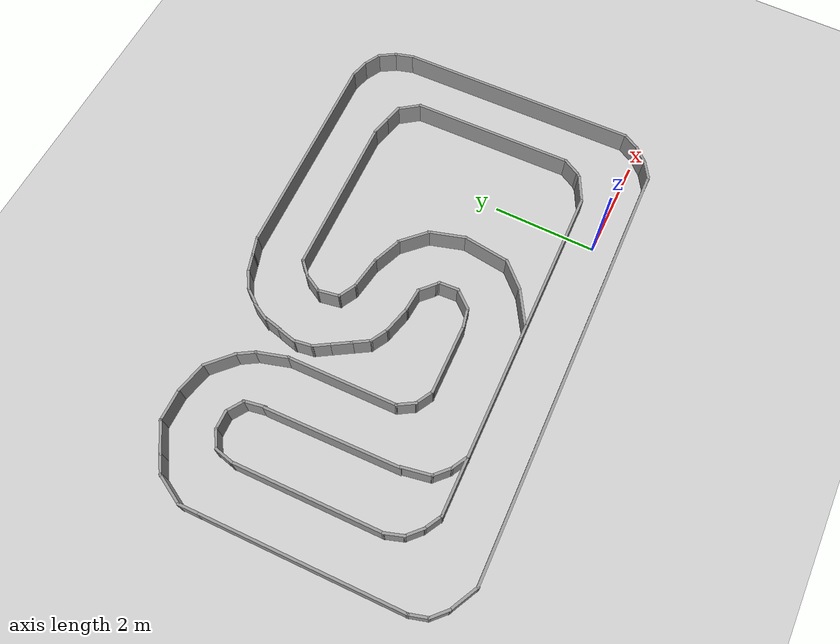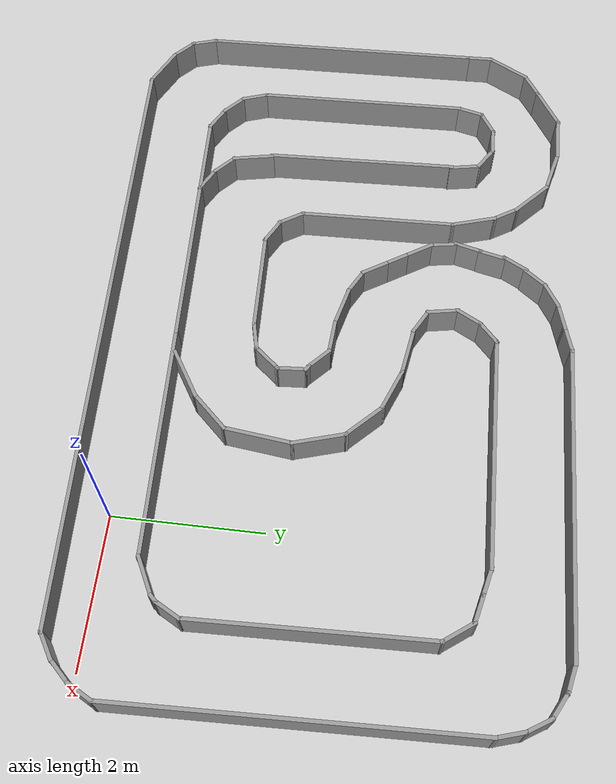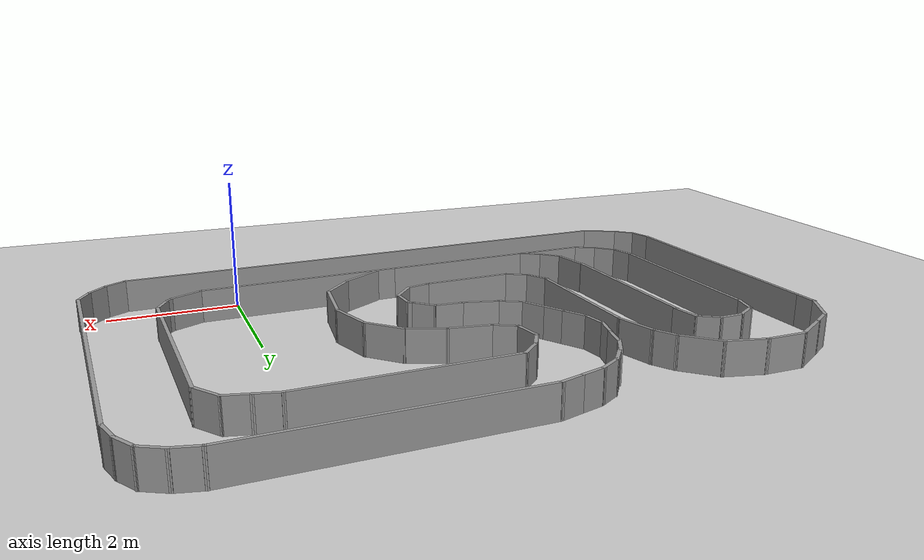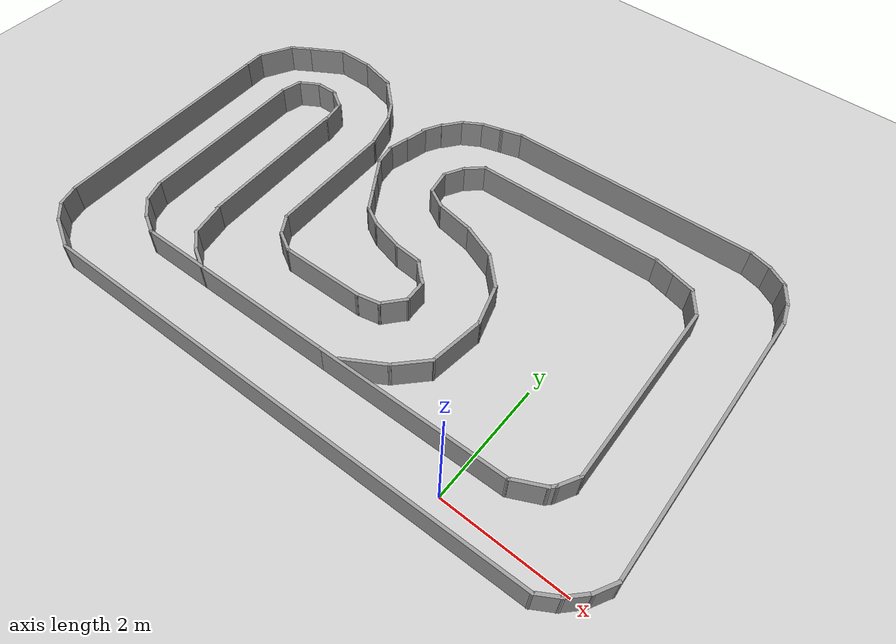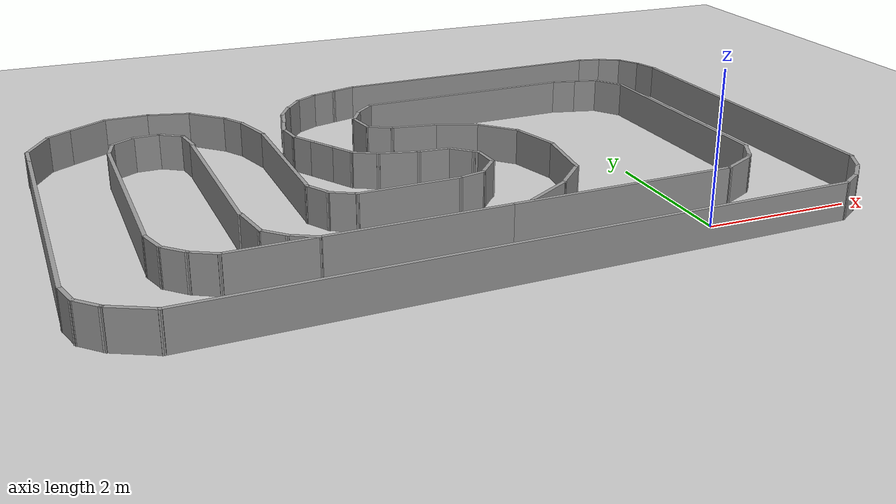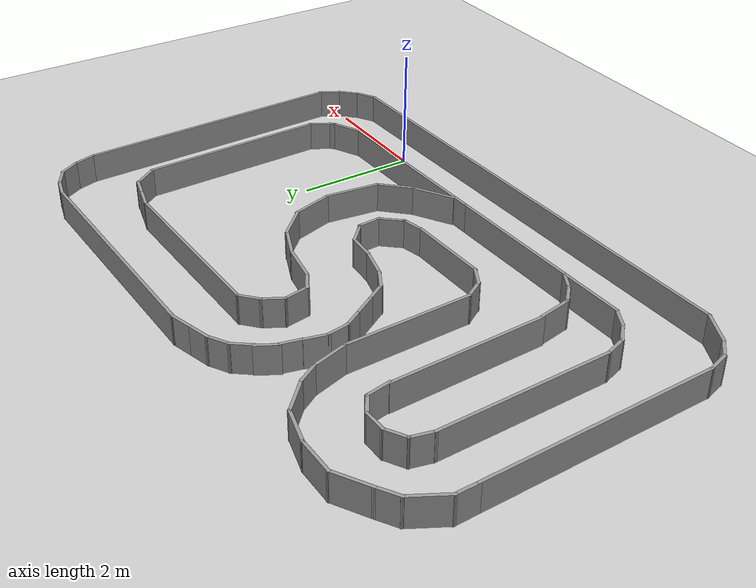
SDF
<sdf version="1.7">
 <world name="default">
  <light name="sun" type="directional">
   <pose>0 0 10 0 -0 0</pose>
   <diffuse>0.8 0.8 0.8 1</diffuse>
   <specular>0.2 0.2 0.2 1</specular>
   <attenuation>
    <range>1000</range>
    <constant>0.9</constant>
    <linear>0.01</linear>
    <quadratic>0.001</quadratic>
   </attenuation>
   <direction>-0.5 0.1 -0.9</direction>
   <spot><inner_angle>0</inner_angle><outer_angle>0</outer_angle><falloff>0</falloff></spot>
  </light>
  <model name="ground_plane">
   <static>1</static>
   <link name="link">
    <collision name="collision">
     <geometry><plane><normal>0 0 1</normal><size>100 100</size></plane></geometry>
     <surface>
      <contact><collide_bitmask>65535</collide_bitmask></contact>
      <friction><ode><mu>100</mu><mu2>50</mu2></ode></friction>
     </surface>
    </collision>
    <visual name="visual">
     <cast_shadows>0</cast_shadows>
     <geometry><plane><normal>0 0 1</normal><size>100 100</size></plane></geometry>
     <material>
      <script><uri>file://media/materials/scripts/gazebo.material</uri><name>Gazebo/Grey</name></script>
     </material>
    </visual>
   </link>
  </model>
  <gravity>0 0 -9.8</gravity>
  <magnetic_field>6e-06 2.3e-05 -4.2e-05</magnetic_field>
  <atmosphere type="adiabatic"/>
  <physics type="ode">
   <max_step_size>0.001</max_step_size>
   <real_time_factor>1</real_time_factor>
   <real_time_update_rate>1000</real_time_update_rate>
  </physics>
  <scene><ambient>0.4 0.4 0.4 1</ambient><background>0.7 0.7 0.7 1</background><shadows>1</shadows></scene>
  <spherical_coordinates>
   <surface_model>EARTH_WGS84</surface_model>
   <latitude_deg>0</latitude_deg>
   <longitude_deg>0</longitude_deg>
   <elevation>0</elevation>
   <heading_deg>0</heading_deg>
  </spherical_coordinates>
  <model name="t">
   <pose>-2.66413 2.58611 0 0 -0 1.59977</pose>
   <link name="Wall_0">
    <collision name="Wall_0_Collision">
     <geometry><box><size>8.4 0.05 0.5</size></box></geometry>
     <pose>0 0 0.25 0 -0 0</pose>
    </collision>
    <visual name="Wall_0_Visual">
     <pose>0 0 0.25 0 -0 0</pose>
     <geometry><box><size>8.4 0.05 0.5</size></box></geometry>
     <material>
      <script><uri>file://media/materials/scripts/gazebo.material</uri><name>Gazebo/Grey</name></script>
      <ambient>1 1 1 1</ambient>
     </material>
     <meta><layer>0</layer></meta>
    </visual>
    <pose>-3.11423 -0.060573 0 0 -0 -1.5708</pose>
   </link>
   <link name="Wall_10">
    <collision name="Wall_10_Collision">
     <geometry><box><size>4.15017 0.05 0.5</size></box></geometry>
     <pose>0 0 0.25 0 -0 0</pose>
    </collision>
    <visual name="Wall_10_Visual">
     <pose>0 0 0.25 0 -0 0</pose>
     <geometry><box><size>4.15017 0.05 0.5</size></box></geometry>
     <material>
      <script><uri>file://media/materials/scripts/gazebo.material</uri><name>Gazebo/Grey</name></script>
      <ambient>1 1 1 1</ambient>
     </material>
     <meta><layer>0</layer></meta>
    </visual>
    <pose>3.11777 -2.00457 0 0 -0 1.5708</pose>
   </link>
   <link name="Wall_12">
    <collision name="Wall_12_Collision">
     <geometry><box><size>0.400036 0.05 0.5</size></box></geometry>
     <pose>0 0 0.25 0 -0 0</pose>
    </collision>
    <visual name="Wall_12_Visual">
     <pose>0 0 0.25 0 -0 0</pose>
     <geometry><box><size>0.400036 0.05 0.5</size></box></geometry>
     <material>
      <script><uri>file://media/materials/scripts/gazebo.material</uri><name>Gazebo/Grey</name></script>
      <ambient>1 1 1 1</ambient>
     </material>
     <meta><layer>0</layer></meta>
    </visual>
    <pose>3.07227 0.214427 0 0 -0 1.83379</pose>
   </link>
   <link name="Wall_13">
    <collision name="Wall_13_Collision">
     <geometry><box><size>0.399777 0.05 0.5</size></box></geometry>
     <pose>0 0 0.25 0 -0 0</pose>
    </collision>
    <visual name="Wall_13_Visual">
     <pose>0 0 0.25 0 -0 0</pose>
     <geometry><box><size>0.399777 0.05 0.5</size></box></geometry>
     <material>
      <script><uri>file://media/materials/scripts/gazebo.material</uri><name>Gazebo/Grey</name></script>
      <ambient>1 1 1 1</ambient>
     </material>
     <meta><layer>0</layer></meta>
    </visual>
    <pose>2.98177 0.552427 0 0 -0 1.83103</pose>
   </link>
   <link name="Wall_14">
    <collision name="Wall_14_Collision">
     <geometry><box><size>0.399906 0.05 0.5</size></box></geometry>
     <pose>0 0 0.25 0 -0 0</pose>
    </collision>
    <visual name="Wall_14_Visual">
     <pose>0 0 0.25 0 -0 0</pose>
     <geometry><box><size>0.399906 0.05 0.5</size></box></geometry>
     <material>
      <script><uri>file://media/materials/scripts/gazebo.material</uri><name>Gazebo/Grey</name></script>
      <ambient>1 1 1 1</ambient>
     </material>
     <meta><layer>0</layer></meta>
    </visual>
    <pose>2.84927 0.872927 0 0 -0 2.09455</pose>
   </link>
   <link name="Wall_15">
    <collision name="Wall_15_Collision">
     <geometry><box><size>0.384204 0.05 0.5</size></box></geometry>
     <pose>0 0 0.25 0 -0 0</pose>
    </collision>
    <visual name="Wall_15_Visual">
     <pose>0 0 0.25 0 -0 0</pose>
     <geometry><box><size>0.384204 0.05 0.5</size></box></geometry>
     <material>
      <script><uri>file://media/materials/scripts/gazebo.material</uri><name>Gazebo/Grey</name></script>
      <ambient>1 1 1 1</ambient>
     </material>
     <meta><layer>0</layer></meta>
    </visual>
    <pose>2.63119 1.1287 0 0 -0 2.46772</pose>
   </link>
   <link name="Wall_16">
    <collision name="Wall_16_Collision">
     <geometry><box><size>0.399906 0.05 0.5</size></box></geometry>
     <pose>0 0 0.25 0 -0 0</pose>
    </collision>
    <visual name="Wall_16_Visual">
     <pose>0 0 0.25 0 -0 0</pose>
     <geometry><box><size>0.399906 0.05 0.5</size></box></geometry>
     <material>
      <script><uri>file://media/materials/scripts/gazebo.material</uri><name>Gazebo/Grey</name></script>
      <ambient>1 1 1 1</ambient>
     </material>
     <meta><layer>0</layer></meta>
    </visual>
    <pose>2.35569 1.33363 0 0 -0 2.61784</pose>
   </link>
   <link name="Wall_17">
    <collision name="Wall_17_Collision">
     <geometry><box><size>0.385391 0.05 0.5</size></box></geometry>
     <pose>0 0 0.25 0 -0 0</pose>
    </collision>
    <visual name="Wall_17_Visual">
     <pose>0 0 0.25 0 -0 0</pose>
     <geometry><box><size>0.385391 0.05 0.5</size></box></geometry>
     <material>
      <script><uri>file://media/materials/scripts/gazebo.material</uri><name>Gazebo/Grey</name></script>
      <ambient>1 1 1 1</ambient>
     </material>
     <meta><layer>0</layer></meta>
    </visual>
    <pose>2.03519 1.44969 0 0 -0 2.89021</pose>
   </link>
   <link name="Wall_18">
    <collision name="Wall_18_Collision">
     <geometry><box><size>0.400036 0.05 0.5</size></box></geometry>
     <pose>0 0 0.25 0 -0 0</pose>
    </collision>
    <visual name="Wall_18_Visual">
     <pose>0 0 0.25 0 -0 0</pose>
     <geometry><box><size>0.400036 0.05 0.5</size></box></geometry>
     <material>
      <script><uri>file://media/materials/scripts/gazebo.material</uri><name>Gazebo/Grey</name></script>
      <ambient>1 1 1 1</ambient>
     </material>
     <meta><layer>0</layer></meta>
    </visual>
    <pose>1.70377 1.54348 0 0 -0 2.8786</pose>
   </link>
   <link name="Wall_19">
    <collision name="Wall_19_Collision">
     <geometry><box><size>0.391908 0.05 0.5</size></box></geometry>
     <pose>0 0 0.25 0 -0 0</pose>
    </collision>
    <visual name="Wall_19_Visual">
     <pose>0 0 0.25 0 -0 0</pose>
     <geometry><box><size>0.391908 0.05 0.5</size></box></geometry>
     <material>
      <script><uri>file://media/materials/scripts/gazebo.material</uri><name>Gazebo/Grey</name></script>
      <ambient>1 1 1 1</ambient>
     </material>
     <meta><layer>0</layer></meta>
    </visual>
    <pose>1.36577 1.55991 0 0 -0 -3.00931</pose>
   </link>
   <link name="Wall_2">
    <collision name="Wall_2_Collision">
     <geometry><box><size>0.4 0.05 0.5</size></box></geometry>
     <pose>0 0 0.25 0 -0 0</pose>
    </collision>
    <visual name="Wall_2_Visual">
     <pose>0 0 0.25 0 -0 0</pose>
     <geometry><box><size>0.4 0.05 0.5</size></box></geometry>
     <material>
      <script><uri>file://media/materials/scripts/gazebo.material</uri><name>Gazebo/Grey</name></script>
      <ambient>1 1 1 1</ambient>
     </material>
     <meta><layer>0</layer></meta>
    </visual>
    <pose>-3.02673 -4.38707 0 0 -0 -1.04704</pose>
   </link>
   <link name="Wall_20">
    <collision name="Wall_20_Collision">
     <geometry><box><size>0.399906 0.05 0.5</size></box></geometry>
     <pose>0 0 0.25 0 -0 0</pose>
    </collision>
    <visual name="Wall_20_Visual">
     <pose>0 0 0.25 0 -0 0</pose>
     <geometry><box><size>0.399906 0.05 0.5</size></box></geometry>
     <material>
      <script><uri>file://media/materials/scripts/gazebo.material</uri><name>Gazebo/Grey</name></script>
      <ambient>1 1 1 1</ambient>
     </material>
     <meta><layer>0</layer></meta>
    </visual>
    <pose>1.04527 1.44993 0 0 -0 -2.61784</pose>
   </link>
   <link name="Wall_21">
    <collision name="Wall_21_Collision">
     <geometry><box><size>0.399922 0.05 0.5</size></box></geometry>
     <pose>0 0 0.25 0 -0 0</pose>
    </collision>
    <visual name="Wall_21_Visual">
     <pose>0 0 0.25 0 -0 0</pose>
     <geometry><box><size>0.399922 0.05 0.5</size></box></geometry>
     <material>
      <script><uri>file://media/materials/scripts/gazebo.material</uri><name>Gazebo/Grey</name></script>
      <ambient>1 1 1 1</ambient>
     </material>
     <meta><layer>0</layer></meta>
    </visual>
    <pose>0.742268 1.27493 0 0 -0 -2.61784</pose>
   </link>
   <link name="Wall_22">
    <collision name="Wall_22_Collision">
     <geometry><box><size>0.399906 0.05 0.5</size></box></geometry>
     <pose>0 0 0.25 0 -0 0</pose>
    </collision>
    <visual name="Wall_22_Visual">
     <pose>0 0 0.25 0 -0 0</pose>
     <geometry><box><size>0.399906 0.05 0.5</size></box></geometry>
     <material>
      <script><uri>file://media/materials/scripts/gazebo.material</uri><name>Gazebo/Grey</name></script>
      <ambient>1 1 1 1</ambient>
     </material>
     <meta><layer>0</layer></meta>
    </visual>
    <pose>0.439268 1.09993 0 0 -0 -2.61784</pose>
   </link>
   <link name="Wall_23">
    <collision name="Wall_23_Collision">
     <geometry><box><size>0.399906 0.05 0.5</size></box></geometry>
     <pose>0 0 0.25 0 -0 0</pose>
    </collision>
    <visual name="Wall_23_Visual">
     <pose>0 0 0.25 0 -0 0</pose>
     <geometry><box><size>0.399906 0.05 0.5</size></box></geometry>
     <material>
      <script><uri>file://media/materials/scripts/gazebo.material</uri><name>Gazebo/Grey</name></script>
      <ambient>1 1 1 1</ambient>
     </material>
     <meta><layer>0</layer></meta>
    </visual>
    <pose>0.200268 0.860927 0 0 -0 -2.09455</pose>
   </link>
   <link name="Wall_27">
    <collision name="Wall_27_Collision">
     <geometry><box><size>0.584614 0.05 0.5</size></box></geometry>
     <pose>0 0 0.25 0 -0 0</pose>
    </collision>
    <visual name="Wall_27_Visual">
     <pose>0 0 0.25 0 -0 0</pose>
     <geometry><box><size>0.584614 0.05 0.5</size></box></geometry>
     <material>
      <script><uri>file://media/materials/scripts/gazebo.material</uri><name>Gazebo/Grey</name></script>
      <ambient>1 1 1 1</ambient>
     </material>
     <meta><layer>0</layer></meta>
    </visual>
    <pose>0.041268 0.451927 0 0 -0 1.29995</pose>
   </link>
   <link name="Wall_29">
    <collision name="Wall_29_Collision">
     <geometry><box><size>0.481405 0.05 0.5</size></box></geometry>
     <pose>0 0 0.25 0 -0 0</pose>
    </collision>
    <visual name="Wall_29_Visual">
     <pose>0 0 0.25 0 -0 0</pose>
     <geometry><box><size>0.481405 0.05 0.5</size></box></geometry>
     <material>
      <script><uri>file://media/materials/scripts/gazebo.material</uri><name>Gazebo/Grey</name></script>
      <ambient>1 1 1 1</ambient>
     </material>
     <meta><layer>0</layer></meta>
    </visual>
    <pose>-0.050232 -0.020573 0 0 -0 1.47804</pose>
   </link>
   <link name="Wall_3">
    <collision name="Wall_3_Collision">
     <geometry><box><size>0.400077 0.05 0.5</size></box></geometry>
     <pose>0 0 0.25 0 -0 0</pose>
    </collision>
    <visual name="Wall_3_Visual">
     <pose>0 0 0.25 0 -0 0</pose>
     <geometry><box><size>0.400077 0.05 0.5</size></box></geometry>
     <material>
      <script><uri>file://media/materials/scripts/gazebo.material</uri><name>Gazebo/Grey</name></script>
      <ambient>1 1 1 1</ambient>
     </material>
     <meta><layer>0</layer></meta>
    </visual>
    <pose>-2.81573 -4.66257 0 0 -0 -0.787418</pose>
   </link>
   <link name="Wall_31">
    <collision name="Wall_31_Collision">
     <geometry><box><size>0.400019 0.05 0.5</size></box></geometry>
     <pose>0 0 0.25 0 -0 0</pose>
    </collision>
    <visual name="Wall_31_Visual">
     <pose>0 0 0.25 0 -0 0</pose>
     <geometry><box><size>0.400019 0.05 0.5</size></box></geometry>
     <material>
      <script><uri>file://media/materials/scripts/gazebo.material</uri><name>Gazebo/Grey</name></script>
      <ambient>1 1 1 1</ambient>
     </material>
     <meta><layer>0</layer></meta>
    </visual>
    <pose>-0.193732 -0.359573 0 0 -0 -2.35417</pose>
   </link>
   <link name="Wall_32">
    <collision name="Wall_32_Collision">
     <geometry><box><size>0.114544 0.05 0.5</size></box></geometry>
     <pose>0 0 0.25 0 -0 0</pose>
    </collision>
    <visual name="Wall_32_Visual">
     <pose>0 0 0.25 0 -0 0</pose>
     <geometry><box><size>0.114544 0.05 0.5</size></box></geometry>
     <material>
      <script><uri>file://media/materials/scripts/gazebo.material</uri><name>Gazebo/Grey</name></script>
      <ambient>1 1 1 1</ambient>
     </material>
     <meta><layer>0</layer></meta>
    </visual>
    <pose>-0.336144 -0.509723 0 0 -0 -2.19692</pose>
   </link>
   <link name="Wall_33">
    <collision name="Wall_33_Collision">
     <geometry><box><size>0.419959 0.05 0.5</size></box></geometry>
     <pose>0 0 0.25 0 -0 0</pose>
    </collision>
    <visual name="Wall_33_Visual">
     <pose>0 0 0.25 0 -0 0</pose>
     <geometry><box><size>0.419959 0.05 0.5</size></box></geometry>
     <material>
      <script><uri>file://media/materials/scripts/gazebo.material</uri><name>Gazebo/Grey</name></script>
      <ambient>1 1 1 1</ambient>
     </material>
     <meta><layer>0</layer></meta>
    </visual>
    <pose>-0.546493 -0.542449 0 0 -0 -3.10604</pose>
   </link>
   <link name="Wall_34">
    <collision name="Wall_34_Collision">
     <geometry><box><size>0.461078 0.05 0.5</size></box></geometry>
     <pose>0 0 0.25 0 -0 0</pose>
    </collision>
    <visual name="Wall_34_Visual">
     <pose>0 0 0.25 0 -0 0</pose>
     <geometry><box><size>0.461078 0.05 0.5</size></box></geometry>
     <material>
      <script><uri>file://media/materials/scripts/gazebo.material</uri><name>Gazebo/Grey</name></script>
      <ambient>1 1 1 1</ambient>
     </material>
     <meta><layer>0</layer></meta>
    </visual>
    <pose>-0.877869 -0.411874 0 0 -0 2.41105</pose>
   </link>
   <link name="Wall_35">
    <collision name="Wall_35_Collision">
     <geometry><box><size>0.408311 0.05 0.5</size></box></geometry>
     <pose>0 0 0.25 0 -0 0</pose>
    </collision>
    <visual name="Wall_35_Visual">
     <pose>0 0 0.25 0 -0 0</pose>
     <geometry><box><size>0.408311 0.05 0.5</size></box></geometry>
     <material>
      <script><uri>file://media/materials/scripts/gazebo.material</uri><name>Gazebo/Grey</name></script>
      <ambient>1 1 1 1</ambient>
     </material>
     <meta><layer>0</layer></meta>
    </visual>
    <pose>-1.06659 -0.099148 0 0 -0 1.77105</pose>
   </link>
   <link name="Wall_36">
    <collision name="Wall_36_Collision">
     <geometry><box><size>1.4 0.05 0.5</size></box></geometry>
     <pose>0 0 0.25 0 -0 0</pose>
    </collision>
    <visual name="Wall_36_Visual">
     <pose>0 0 0.25 0 -0 0</pose>
     <geometry><box><size>1.4 0.05 0.5</size></box></geometry>
     <material>
      <script><uri>file://media/materials/scripts/gazebo.material</uri><name>Gazebo/Grey</name></script>
      <ambient>1 1 1 1</ambient>
     </material>
     <meta><layer>0</layer></meta>
    </visual>
    <pose>-1.10223 0.751427 0 0 -0 1.5708</pose>
   </link>
   <link name="Wall_37">
    <collision name="Wall_37_Collision">
     <geometry><box><size>0.399906 0.05 0.5</size></box></geometry>
     <pose>0 0 0.25 0 -0 0</pose>
    </collision>
    <visual name="Wall_37_Visual">
     <pose>0 0 0.25 0 -0 0</pose>
     <geometry><box><size>0.399906 0.05 0.5</size></box></geometry>
     <material>
      <script><uri>file://media/materials/scripts/gazebo.material</uri><name>Gazebo/Grey</name></script>
      <ambient>1 1 1 1</ambient>
     </material>
     <meta><layer>0</layer></meta>
    </visual>
    <pose>-1.01473 1.57793 0 0 -0 1.04704</pose>
   </link>
   <link name="Wall_38">
    <collision name="Wall_38_Collision">
     <geometry><box><size>0.399906 0.05 0.5</size></box></geometry>
     <pose>0 0 0.25 0 -0 0</pose>
    </collision>
    <visual name="Wall_38_Visual">
     <pose>0 0 0.25 0 -0 0</pose>
     <geometry><box><size>0.399906 0.05 0.5</size></box></geometry>
     <material>
      <script><uri>file://media/materials/scripts/gazebo.material</uri><name>Gazebo/Grey</name></script>
      <ambient>1 1 1 1</ambient>
     </material>
     <meta><layer>0</layer></meta>
    </visual>
    <pose>-0.775732 1.81693 0 0 -0 0.523754</pose>
   </link>
   <link name="Wall_39">
    <collision name="Wall_39_Collision">
     <geometry><box><size>2.15002 0.05 0.5</size></box></geometry>
     <pose>0 0 0.25 0 -0 0</pose>
    </collision>
    <visual name="Wall_39_Visual">
     <pose>0 0 0.25 0 -0 0</pose>
     <geometry><box><size>2.15002 0.05 0.5</size></box></geometry>
     <material>
      <script><uri>file://media/materials/scripts/gazebo.material</uri><name>Gazebo/Grey</name></script>
      <ambient>1 1 1 1</ambient>
     </material>
     <meta><layer>0</layer></meta>
    </visual>
    <pose>0.425768 1.90443 0 0 -0 0</pose>
   </link>
   <link name="Wall_4">
    <collision name="Wall_4_Collision">
     <geometry><box><size>0.400221 0.05 0.5</size></box></geometry>
     <pose>0 0 0.25 0 -0 0</pose>
    </collision>
    <visual name="Wall_4_Visual">
     <pose>0 0 0.25 0 -0 0</pose>
     <geometry><box><size>0.400221 0.05 0.5</size></box></geometry>
     <material>
      <script><uri>file://media/materials/scripts/gazebo.material</uri><name>Gazebo/Grey</name></script>
      <ambient>1 1 1 1</ambient>
     </material>
     <meta><layer>0</layer></meta>
    </visual>
    <pose>-2.54023 -4.87407 0 0 -0 -0.522329</pose>
   </link>
   <link name="Wall_40">
    <collision name="Wall_40_Collision">
     <geometry><box><size>0.650354 0.05 0.5</size></box></geometry>
     <pose>0 0 0.25 0 -0 0</pose>
    </collision>
    <visual name="Wall_40_Visual">
     <pose>0 0 0.25 0 -0 0</pose>
     <geometry><box><size>0.650354 0.05 0.5</size></box></geometry>
     <material>
      <script><uri>file://media/materials/scripts/gazebo.material</uri><name>Gazebo/Grey</name></script>
      <ambient>1 1 1 1</ambient>
     </material>
     <meta><layer>0</layer></meta>
    </visual>
    <pose>1.76577 1.98193 0 0 -0 0.261139</pose>
   </link>
   <link name="Wall_41">
    <collision name="Wall_41_Collision">
     <geometry><box><size>0.399906 0.05 0.5</size></box></geometry>
     <pose>0 0 0.25 0 -0 0</pose>
    </collision>
    <visual name="Wall_41_Visual">
     <pose>0 0 0.25 0 -0 0</pose>
     <geometry><box><size>0.399906 0.05 0.5</size></box></geometry>
     <material>
      <script><uri>file://media/materials/scripts/gazebo.material</uri><name>Gazebo/Grey</name></script>
      <ambient>1 1 1 1</ambient>
     </material>
     <meta><layer>0</layer></meta>
    </visual>
    <pose>2.20727 2.14693 0 0 -0 0.523754</pose>
   </link>
   <link name="Wall_42">
    <collision name="Wall_42_Collision">
     <geometry><box><size>0.649627 0.05 0.5</size></box></geometry>
     <pose>0 0 0.25 0 -0 0</pose>
    </collision>
    <visual name="Wall_42_Visual">
     <pose>0 0 0.25 0 -0 0</pose>
     <geometry><box><size>0.649627 0.05 0.5</size></box></geometry>
     <material>
      <script><uri>file://media/materials/scripts/gazebo.material</uri><name>Gazebo/Grey</name></script>
      <ambient>1 1 1 1</ambient>
     </material>
     <meta><layer>0</layer></meta>
    </visual>
    <pose>2.57077 2.44643 0 0 -0 0.785398</pose>
   </link>
   <link name="Wall_43">
    <collision name="Wall_43_Collision">
     <geometry><box><size>0.650613 0.05 0.5</size></box></geometry>
     <pose>0 0 0.25 0 -0 0</pose>
    </collision>
    <visual name="Wall_43_Visual">
     <pose>0 0 0.25 0 -0 0</pose>
     <geometry><box><size>0.650613 0.05 0.5</size></box></geometry>
     <material>
      <script><uri>file://media/materials/scripts/gazebo.material</uri><name>Gazebo/Grey</name></script>
      <ambient>1 1 1 1</ambient>
     </material>
     <meta><layer>0</layer></meta>
    </visual>
    <pose>2.86077 2.94843 0 0 -0 1.30805</pose>
   </link>
   <link name="Wall_44">
    <collision name="Wall_44_Collision">
     <geometry><box><size>0.650083 0.05 0.5</size></box></geometry>
     <pose>0 0 0.25 0 -0 0</pose>
    </collision>
    <visual name="Wall_44_Visual">
     <pose>0 0 0.25 0 -0 0</pose>
     <geometry><box><size>0.650083 0.05 0.5</size></box></geometry>
     <material>
      <script><uri>file://media/materials/scripts/gazebo.material</uri><name>Gazebo/Grey</name></script>
      <ambient>1 1 1 1</ambient>
     </material>
     <meta><layer>0</layer></meta>
    </visual>
    <pose>2.94377 3.53843 0 0 -0 1.55413</pose>
   </link>
   <link name="Wall_45">
    <collision name="Wall_45_Collision">
     <geometry><box><size>0.650333 0.05 0.5</size></box></geometry>
     <pose>0 0 0.25 0 -0 0</pose>
    </collision>
    <visual name="Wall_45_Visual">
     <pose>0 0 0.25 0 -0 0</pose>
     <geometry><box><size>0.650333 0.05 0.5</size></box></geometry>
     <material>
      <script><uri>file://media/materials/scripts/gazebo.material</uri><name>Gazebo/Grey</name></script>
      <ambient>1 1 1 1</ambient>
     </material>
     <meta><layer>0</layer></meta>
    </visual>
    <pose>2.79877 4.09843 0 0 -0 2.09408</pose>
   </link>
   <link name="Wall_46">
    <collision name="Wall_46_Collision">
     <geometry><box><size>0.405013 0.05 0.5</size></box></geometry>
     <pose>0 0 0.25 0 -0 0</pose>
    </collision>
    <visual name="Wall_46_Visual">
     <pose>0 0 0.25 0 -0 0</pose>
     <geometry><box><size>0.405013 0.05 0.5</size></box></geometry>
     <material>
      <script><uri>file://media/materials/scripts/gazebo.material</uri><name>Gazebo/Grey</name></script>
      <ambient>1 1 1 1</ambient>
     </material>
     <meta><layer>0</layer></meta>
    </visual>
    <pose>2.55627 4.50993 0 0 -0 2.11895</pose>
   </link>
   <link name="Wall_47">
    <collision name="Wall_47_Collision">
     <geometry><box><size>0.650333 0.05 0.5</size></box></geometry>
     <pose>0 0 0.25 0 -0 0</pose>
    </collision>
    <visual name="Wall_47_Visual">
     <pose>0 0 0.25 0 -0 0</pose>
     <geometry><box><size>0.650333 0.05 0.5</size></box></geometry>
     <material>
      <script><uri>file://media/materials/scripts/gazebo.material</uri><name>Gazebo/Grey</name></script>
      <ambient>1 1 1 1</ambient>
     </material>
     <meta><layer>0</layer></meta>
    </visual>
    <pose>2.20377 4.81143 0 0 -0 2.61831</pose>
   </link>
   <link name="Wall_48">
    <collision name="Wall_48_Collision">
     <geometry><box><size>0.4 0.05 0.5</size></box></geometry>
     <pose>0 0 0.25 0 -0 0</pose>
    </collision>
    <visual name="Wall_48_Visual">
     <pose>0 0 0.25 0 -0 0</pose>
     <geometry><box><size>0.4 0.05 0.5</size></box></geometry>
     <material>
      <script><uri>file://media/materials/scripts/gazebo.material</uri><name>Gazebo/Grey</name></script>
      <ambient>1 1 1 1</ambient>
     </material>
     <meta><layer>0</layer></meta>
    </visual>
    <pose>1.76877 4.96143 0 0 -0 3.14159</pose>
   </link>
   <link name="Wall_49">
    <collision name="Wall_49_Collision">
     <geometry><box><size>3.9 0.05 0.5</size></box></geometry>
     <pose>0 0 0.25 0 -0 0</pose>
    </collision>
    <visual name="Wall_49_Visual">
     <pose>0 0 0.25 0 -0 0</pose>
     <geometry><box><size>3.9 0.05 0.5</size></box></geometry>
     <material>
      <script><uri>file://media/materials/scripts/gazebo.material</uri><name>Gazebo/Grey</name></script>
      <ambient>1 1 1 1</ambient>
     </material>
     <meta><layer>0</layer></meta>
    </visual>
    <pose>-0.331232 4.96143 0 0 -0 3.14159</pose>
   </link>
   <link name="Wall_5">
    <collision name="Wall_5_Collision">
     <geometry><box><size>4.6496 0.05 0.5</size></box></geometry>
     <pose>0 0 0.25 0 -0 0</pose>
    </collision>
    <visual name="Wall_5_Visual">
     <pose>0 0 0.25 0 -0 0</pose>
     <geometry><box><size>4.6496 0.05 0.5</size></box></geometry>
     <material>
      <script><uri>file://media/materials/scripts/gazebo.material</uri><name>Gazebo/Grey</name></script>
      <ambient>1 1 1 1</ambient>
     </material>
     <meta><layer>0</layer></meta>
    </visual>
    <pose>-0.088232 -4.96157 0 0 -0 0</pose>
   </link>
   <link name="Wall_50">
    <collision name="Wall_50_Collision">
     <geometry><box><size>0.400036 0.05 0.5</size></box></geometry>
     <pose>0 0 0.25 0 -0 0</pose>
    </collision>
    <visual name="Wall_50_Visual">
     <pose>0 0 0.25 0 -0 0</pose>
     <geometry><box><size>0.400036 0.05 0.5</size></box></geometry>
     <material>
      <script><uri>file://media/materials/scripts/gazebo.material</uri><name>Gazebo/Grey</name></script>
      <ambient>1 1 1 1</ambient>
     </material>
     <meta><layer>0</layer></meta>
    </visual>
    <pose>-2.42523 4.91593 0 0 -0 -2.8786</pose>
   </link>
   <link name="Wall_51">
    <collision name="Wall_51_Collision">
     <geometry><box><size>0.400019 0.05 0.5</size></box></geometry>
     <pose>0 0 0.25 0 -0 0</pose>
    </collision>
    <visual name="Wall_51_Visual">
     <pose>0 0 0.25 0 -0 0</pose>
     <geometry><box><size>0.400019 0.05 0.5</size></box></geometry>
     <material>
      <script><uri>file://media/materials/scripts/gazebo.material</uri><name>Gazebo/Grey</name></script>
      <ambient>1 1 1 1</ambient>
     </material>
     <meta><layer>0</layer></meta>
    </visual>
    <pose>-2.71823 4.74693 0 0 -0 -2.35821</pose>
   </link>
   <link name="Wall_52">
    <collision name="Wall_52_Collision">
     <geometry><box><size>0.627118 0.05 0.5</size></box></geometry>
     <pose>0 0 0.25 0 -0 0</pose>
    </collision>
    <visual name="Wall_52_Visual">
     <pose>0 0 0.25 0 -0 0</pose>
     <geometry><box><size>0.627118 0.05 0.5</size></box></geometry>
     <material>
      <script><uri>file://media/materials/scripts/gazebo.material</uri><name>Gazebo/Grey</name></script>
      <ambient>1 1 1 1</ambient>
     </material>
     <meta><layer>0</layer></meta>
    </visual>
    <pose>-2.97823 4.36893 0 0 -0 -2.06157</pose>
   </link>
   <link name="Wall_54">
    <collision name="Wall_54_Collision">
     <geometry><box><size>2.9005 0.05 0.5</size></box></geometry>
     <pose>0 0 0.25 0 -0 0</pose>
    </collision>
    <visual name="Wall_54_Visual">
     <pose>0 0 0.25 0 -0 0</pose>
     <geometry><box><size>2.9005 0.05 0.5</size></box></geometry>
     <material>
      <script><uri>file://media/materials/scripts/gazebo.material</uri><name>Gazebo/Grey</name></script>
      <ambient>1 1 1 1</ambient>
     </material>
     <meta><layer>0</layer></meta>
    </visual>
    <pose>0.064768 3.97393 0 0 -0 -0.000351</pose>
   </link>
   <link name="Wall_55">
    <collision name="Wall_55_Collision">
     <geometry><box><size>0.400743 0.05 0.5</size></box></geometry>
     <pose>0 0 0.25 0 -0 0</pose>
    </collision>
    <visual name="Wall_55_Visual">
     <pose>0 0 0.25 0 -0 0</pose>
     <geometry><box><size>0.400743 0.05 0.5</size></box></geometry>
     <material>
      <script><uri>file://media/materials/scripts/gazebo.material</uri><name>Gazebo/Grey</name></script>
      <ambient>1 1 1 1</ambient>
     </material>
     <meta><layer>0</layer></meta>
    </visual>
    <pose>1.65927 3.92843 0 0 -0 -0.2595</pose>
   </link>
   <link name="Wall_56">
    <collision name="Wall_56_Collision">
     <geometry><box><size>0.399906 0.05 0.5</size></box></geometry>
     <pose>0 0 0.25 0 -0 0</pose>
    </collision>
    <visual name="Wall_56_Visual">
     <pose>0 0 0.25 0 -0 0</pose>
     <geometry><box><size>0.399906 0.05 0.5</size></box></geometry>
     <material>
      <script><uri>file://media/materials/scripts/gazebo.material</uri><name>Gazebo/Grey</name></script>
      <ambient>1 1 1 1</ambient>
     </material>
     <meta><layer>0</layer></meta>
    </visual>
    <pose>1.91627 3.73193 0 0 -0 -1.04704</pose>
   </link>
   <link name="Wall_57">
    <collision name="Wall_57_Collision">
     <geometry><box><size>0.400196 0.05 0.5</size></box></geometry>
     <pose>0 0 0.25 0 -0 0</pose>
    </collision>
    <visual name="Wall_57_Visual">
     <pose>0 0 0.25 0 -0 0</pose>
     <geometry><box><size>0.400196 0.05 0.5</size></box></geometry>
     <material>
      <script><uri>file://media/materials/scripts/gazebo.material</uri><name>Gazebo/Grey</name></script>
      <ambient>1 1 1 1</ambient>
     </material>
     <meta><layer>0</layer></meta>
    </visual>
    <pose>2.00377 3.40543 0 0 -0 -1.5708</pose>
   </link>
   <link name="Wall_58">
    <collision name="Wall_58_Collision">
     <geometry><box><size>0.388709 0.05 0.5</size></box></geometry>
     <pose>0 0 0.25 0 -0 0</pose>
    </collision>
    <visual name="Wall_58_Visual">
     <pose>0 0 0.25 0 -0 0</pose>
     <geometry><box><size>0.388709 0.05 0.5</size></box></geometry>
     <material>
      <script><uri>file://media/materials/scripts/gazebo.material</uri><name>Gazebo/Grey</name></script>
      <ambient>1 1 1 1</ambient>
     </material>
     <meta><layer>0</layer></meta>
    </visual>
    <pose>1.90871 3.09027 0 0 -0 -2.16677</pose>
   </link>
   <link name="Wall_59">
    <collision name="Wall_59_Collision">
     <geometry><box><size>0.449969 0.05 0.5</size></box></geometry>
     <pose>0 0 0.25 0 -0 0</pose>
    </collision>
    <visual name="Wall_59_Visual">
     <pose>0 0 0.25 0 -0 0</pose>
     <geometry><box><size>0.449969 0.05 0.5</size></box></geometry>
     <material>
      <script><uri>file://media/materials/scripts/gazebo.material</uri><name>Gazebo/Grey</name></script>
      <ambient>1 1 1 1</ambient>
     </material>
     <meta><layer>0</layer></meta>
    </visual>
    <pose>1.61596 2.9123 0 0 -0 -2.98977</pose>
   </link>
   <link name="Wall_6">
    <collision name="Wall_6_Collision">
     <geometry><box><size>0.399715 0.05 0.5</size></box></geometry>
     <pose>0 0 0.25 0 -0 0</pose>
    </collision>
    <visual name="Wall_6_Visual">
     <pose>0 0 0.25 0 -0 0</pose>
     <geometry><box><size>0.399715 0.05 0.5</size></box></geometry>
     <material>
      <script><uri>file://media/materials/scripts/gazebo.material</uri><name>Gazebo/Grey</name></script>
      <ambient>1 1 1 1</ambient>
     </material>
     <meta><layer>0</layer></meta>
    </visual>
    <pose>2.38077 -4.91607 0 0 -0 0.262995</pose>
   </link>
   <link name="Wall_60">
    <collision name="Wall_60_Collision">
     <geometry><box><size>2.63498 0.05 0.5</size></box></geometry>
     <pose>0 0 0.25 0 -0 0</pose>
    </collision>
    <visual name="Wall_60_Visual">
     <pose>0 0 0.25 0 -0 0</pose>
     <geometry><box><size>2.63498 0.05 0.5</size></box></geometry>
     <material>
      <script><uri>file://media/materials/scripts/gazebo.material</uri><name>Gazebo/Grey</name></script>
      <ambient>1 1 1 1</ambient>
     </material>
     <meta><layer>0</layer></meta>
    </visual>
    <pose>0.133399 2.88584 0 0 -0 -3.13282</pose>
   </link>
   <link name="Wall_61">
    <collision name="Wall_61_Collision">
     <geometry><box><size>0.591817 0.05 0.5</size></box></geometry>
     <pose>0 0 0.25 0 -0 0</pose>
    </collision>
    <visual name="Wall_61_Visual">
     <pose>0 0 0.25 0 -0 0</pose>
     <geometry><box><size>0.591817 0.05 0.5</size></box></geometry>
     <material>
      <script><uri>file://media/materials/scripts/gazebo.material</uri><name>Gazebo/Grey</name></script>
      <ambient>1 1 1 1</ambient>
     </material>
     <meta><layer>0</layer></meta>
    </visual>
    <pose>-1.43392 2.8154 0 0 -0 -2.97855</pose>
   </link>
   <link name="Wall_62">
    <collision name="Wall_62_Collision">
     <geometry><box><size>0.399311 0.05 0.5</size></box></geometry>
     <pose>0 0 0.25 0 -0 0</pose>
    </collision>
    <visual name="Wall_62_Visual">
     <pose>0 0 0.25 0 -0 0</pose>
     <geometry><box><size>0.399311 0.05 0.5</size></box></geometry>
     <material>
      <script><uri>file://media/materials/scripts/gazebo.material</uri><name>Gazebo/Grey</name></script>
      <ambient>1 1 1 1</ambient>
     </material>
     <meta><layer>0</layer></meta>
    </visual>
    <pose>-1.82473 2.64793 0 0 -0 -2.35619</pose>
   </link>
   <link name="Wall_65">
    <collision name="Wall_65_Collision">
     <geometry><box><size>0.399906 0.05 0.5</size></box></geometry>
     <pose>0 0 0.25 0 -0 0</pose>
    </collision>
    <visual name="Wall_65_Visual">
     <pose>0 0 0.25 0 -0 0</pose>
     <geometry><box><size>0.399906 0.05 0.5</size></box></geometry>
     <material>
      <script><uri>file://media/materials/scripts/gazebo.material</uri><name>Gazebo/Grey</name></script>
      <ambient>1 1 1 1</ambient>
     </material>
     <meta><layer>0</layer></meta>
    </visual>
    <pose>-2.03573 2.37293 0 0 -0 -2.09455</pose>
   </link>
   <link name="Wall_66">
    <collision name="Wall_66_Collision">
     <geometry><box><size>2.40019 0.05 0.5</size></box></geometry>
     <pose>0 0 0.25 0 -0 0</pose>
    </collision>
    <visual name="Wall_66_Visual">
     <pose>0 0 0.25 0 -0 0</pose>
     <geometry><box><size>2.40019 0.05 0.5</size></box></geometry>
     <material>
      <script><uri>file://media/materials/scripts/gazebo.material</uri><name>Gazebo/Grey</name></script>
      <ambient>1 1 1 1</ambient>
     </material>
     <meta><layer>0</layer></meta>
    </visual>
    <pose>-2.12323 1.04643 0 0 -0 -1.5708</pose>
   </link>
   <link name="Wall_67">
    <collision name="Wall_67_Collision">
     <geometry><box><size>3.15019 0.05 0.5</size></box></geometry>
     <pose>0 0 0.25 0 -0 0</pose>
    </collision>
    <visual name="Wall_67_Visual">
     <pose>0 0 0.25 0 -0 0</pose>
     <geometry><box><size>3.15019 0.05 0.5</size></box></geometry>
     <material>
      <script><uri>file://media/materials/scripts/gazebo.material</uri><name>Gazebo/Grey</name></script>
      <ambient>1 1 1 1</ambient>
     </material>
     <meta><layer>0</layer></meta>
    </visual>
    <pose>-2.12323 -1.67857 0 0 -0 -1.5708</pose>
   </link>
   <link name="Wall_69">
    <collision name="Wall_69_Collision">
     <geometry><box><size>1.15 0.05 0.5</size></box></geometry>
     <pose>0 0 0.25 0 -0 0</pose>
    </collision>
    <visual name="Wall_69_Visual">
     <pose>0 0 0.25 0 -0 0</pose>
     <geometry><box><size>1.15 0.05 0.5</size></box></geometry>
     <material>
      <script><uri>file://media/materials/scripts/gazebo.material</uri><name>Gazebo/Grey</name></script>
      <ambient>1 1 1 1</ambient>
     </material>
     <meta><layer>0</layer></meta>
    </visual>
    <pose>-2.12323 2.77143 0 0 -0 1.5708</pose>
   </link>
   <link name="Wall_7">
    <collision name="Wall_7_Collision">
     <geometry><box><size>0.39971 0.05 0.5</size></box></geometry>
     <pose>0 0 0.25 0 -0 0</pose>
    </collision>
    <visual name="Wall_7_Visual">
     <pose>0 0 0.25 0 -0 0</pose>
     <geometry><box><size>0.39971 0.05 0.5</size></box></geometry>
     <material>
      <script><uri>file://media/materials/scripts/gazebo.material</uri><name>Gazebo/Grey</name></script>
      <ambient>1 1 1 1</ambient>
     </material>
     <meta><layer>0</layer></meta>
    </visual>
    <pose>2.70127 -4.78307 0 0 -0 0.523754</pose>
   </link>
   <link name="Wall_70">
    <collision name="Wall_70_Collision">
     <geometry><box><size>0.399906 0.05 0.5</size></box></geometry>
     <pose>0 0 0.25 0 -0 0</pose>
    </collision>
    <visual name="Wall_70_Visual">
     <pose>0 0 0.25 0 -0 0</pose>
     <geometry><box><size>0.399906 0.05 0.5</size></box></geometry>
     <material>
      <script><uri>file://media/materials/scripts/gazebo.material</uri><name>Gazebo/Grey</name></script>
      <ambient>1 1 1 1</ambient>
     </material>
     <meta><layer>0</layer></meta>
    </visual>
    <pose>-2.03573 3.47293 0 0 -0 1.04704</pose>
   </link>
   <link name="Wall_71">
    <collision name="Wall_71_Collision">
     <geometry><box><size>0.399311 0.05 0.5</size></box></geometry>
     <pose>0 0 0.25 0 -0 0</pose>
    </collision>
    <visual name="Wall_71_Visual">
     <pose>0 0 0.25 0 -0 0</pose>
     <geometry><box><size>0.399311 0.05 0.5</size></box></geometry>
     <material>
      <script><uri>file://media/materials/scripts/gazebo.material</uri><name>Gazebo/Grey</name></script>
      <ambient>1 1 1 1</ambient>
     </material>
     <meta><layer>0</layer></meta>
    </visual>
    <pose>-1.82473 3.74793 0 0 -0 0.785398</pose>
   </link>
   <link name="Wall_72">
    <collision name="Wall_72_Collision">
     <geometry><box><size>0.406216 0.05 0.5</size></box></geometry>
     <pose>0 0 0.25 0 -0 0</pose>
    </collision>
    <visual name="Wall_72_Visual">
     <pose>0 0 0.25 0 -0 0</pose>
     <geometry><box><size>0.406216 0.05 0.5</size></box></geometry>
     <material>
      <script><uri>file://media/materials/scripts/gazebo.material</uri><name>Gazebo/Grey</name></script>
      <ambient>1 1 1 1</ambient>
     </material>
     <meta><layer>0</layer></meta>
    </visual>
    <pose>-1.53073 3.92293 0 0 -0 0.293339</pose>
   </link>
   <link name="Wall_74">
    <collision name="Wall_74_Collision">
     <geometry><box><size>0.75 0.05 0.5</size></box></geometry>
     <pose>0 0 0.25 0 -0 0</pose>
    </collision>
    <visual name="Wall_74_Visual">
     <pose>0 0 0.25 0 -0 0</pose>
     <geometry><box><size>0.75 0.05 0.5</size></box></geometry>
     <material>
      <script><uri>file://media/materials/scripts/gazebo.material</uri><name>Gazebo/Grey</name></script>
      <ambient>1 1 1 1</ambient>
     </material>
     <meta><layer>0</layer></meta>
    </visual>
    <pose>-1.91523 -0.732464 0 0 -0 -1.0472</pose>
   </link>
   <link name="Wall_75">
    <collision name="Wall_75_Collision">
     <geometry><box><size>0.650334 0.05 0.5</size></box></geometry>
     <pose>0 0 0.25 0 -0 0</pose>
    </collision>
    <visual name="Wall_75_Visual">
     <pose>0 0 0.25 0 -0 0</pose>
     <geometry><box><size>0.650334 0.05 0.5</size></box></geometry>
     <material>
      <script><uri>file://media/materials/scripts/gazebo.material</uri><name>Gazebo/Grey</name></script>
      <ambient>1 1 1 1</ambient>
     </material>
     <meta><layer>0</layer></meta>
    </visual>
    <pose>-1.52773 -1.24757 0 0 -0 -0.78422</pose>
   </link>
   <link name="Wall_76">
    <collision name="Wall_76_Collision">
     <geometry><box><size>0.946801 0.05 0.5</size></box></geometry>
     <pose>0 0 0.25 0 -0 0</pose>
    </collision>
    <visual name="Wall_76_Visual">
     <pose>0 0 0.25 0 -0 0</pose>
     <geometry><box><size>0.946801 0.05 0.5</size></box></geometry>
     <material>
      <script><uri>file://media/materials/scripts/gazebo.material</uri><name>Gazebo/Grey</name></script>
      <ambient>1 1 1 1</ambient>
     </material>
     <meta><layer>0</layer></meta>
    </visual>
    <pose>-0.871654 -1.52516 0 0 -0 -0.146795</pose>
   </link>
   <link name="Wall_77">
    <collision name="Wall_77_Collision">
     <geometry><box><size>0.75 0.05 0.5</size></box></geometry>
     <pose>0 0 0.25 0 -0 0</pose>
    </collision>
    <visual name="Wall_77_Visual">
     <pose>0 0 0.25 0 -0 0</pose>
     <geometry><box><size>0.75 0.05 0.5</size></box></geometry>
     <material>
      <script><uri>file://media/materials/scripts/gazebo.material</uri><name>Gazebo/Grey</name></script>
      <ambient>1 1 1 1</ambient>
     </material>
     <meta><layer>0</layer></meta>
    </visual>
    <pose>-0.090002 -1.50016 0 0 -0 0.261799</pose>
   </link>
   <link name="Wall_78">
    <collision name="Wall_78_Collision">
     <geometry><box><size>0.655163 0.05 0.5</size></box></geometry>
     <pose>0 0 0.25 0 -0 0</pose>
    </collision>
    <visual name="Wall_78_Visual">
     <pose>0 0 0.25 0 -0 0</pose>
     <geometry><box><size>0.655163 0.05 0.5</size></box></geometry>
     <material>
      <script><uri>file://media/materials/scripts/gazebo.material</uri><name>Gazebo/Grey</name></script>
      <ambient>1 1 1 1</ambient>
     </material>
     <meta><layer>0</layer></meta>
    </visual>
    <pose>0.460072 -1.20257 0 0 -0 0.753387</pose>
   </link>
   <link name="Wall_79">
    <collision name="Wall_79_Collision">
     <geometry><box><size>0.624862 0.05 0.5</size></box></geometry>
     <pose>0 0 0.25 0 -0 0</pose>
    </collision>
    <visual name="Wall_79_Visual">
     <pose>0 0 0.25 0 -0 0</pose>
     <geometry><box><size>0.624862 0.05 0.5</size></box></geometry>
     <material>
      <script><uri>file://media/materials/scripts/gazebo.material</uri><name>Gazebo/Grey</name></script>
      <ambient>1 1 1 1</ambient>
     </material>
     <meta><layer>0</layer></meta>
    </visual>
    <pose>0.793268 -0.721073 0 0 -0 1.16864</pose>
   </link>
   <link name="Wall_8">
    <collision name="Wall_8_Collision">
     <geometry><box><size>0.399881 0.05 0.5</size></box></geometry>
     <pose>0 0 0.25 0 -0 0</pose>
    </collision>
    <visual name="Wall_8_Visual">
     <pose>0 0 0.25 0 -0 0</pose>
     <geometry><box><size>0.399881 0.05 0.5</size></box></geometry>
     <material>
      <script><uri>file://media/materials/scripts/gazebo.material</uri><name>Gazebo/Grey</name></script>
      <ambient>1 1 1 1</ambient>
     </material>
     <meta><layer>0</layer></meta>
    </visual>
    <pose>2.94027 -4.54407 0 0 -0 1.04704</pose>
   </link>
   <link name="Wall_80">
    <collision name="Wall_80_Collision">
     <geometry><box><size>0.680758 0.05 0.5</size></box></geometry>
     <pose>0 0 0.25 0 -0 0</pose>
    </collision>
    <visual name="Wall_80_Visual">
     <pose>0 0 0.25 0 -0 0</pose>
     <geometry><box><size>0.680758 0.05 0.5</size></box></geometry>
     <material>
      <script><uri>file://media/materials/scripts/gazebo.material</uri><name>Gazebo/Grey</name></script>
      <ambient>1 1 1 1</ambient>
     </material>
     <meta><layer>0</layer></meta>
    </visual>
    <pose>0.963768 -0.146573 0 0 -0 1.38584</pose>
   </link>
   <link name="Wall_81">
    <collision name="Wall_81_Collision">
     <geometry><box><size>0.399906 0.05 0.5</size></box></geometry>
     <pose>0 0 0.25 0 -0 0</pose>
    </collision>
    <visual name="Wall_81_Visual">
     <pose>0 0 0.25 0 -0 0</pose>
     <geometry><box><size>0.399906 0.05 0.5</size></box></geometry>
     <material>
      <script><uri>file://media/materials/scripts/gazebo.material</uri><name>Gazebo/Grey</name></script>
      <ambient>1 1 1 1</ambient>
     </material>
     <meta><layer>0</layer></meta>
    </visual>
    <pose>1.10927 0.314927 0 0 -0 1.04704</pose>
   </link>
   <link name="Wall_82">
    <collision name="Wall_82_Collision">
     <geometry><box><size>0.452647 0.05 0.5</size></box></geometry>
     <pose>0 0 0.25 0 -0 0</pose>
    </collision>
    <visual name="Wall_82_Visual">
     <pose>0 0 0.25 0 -0 0</pose>
     <geometry><box><size>0.452647 0.05 0.5</size></box></geometry>
     <material>
      <script><uri>file://media/materials/scripts/gazebo.material</uri><name>Gazebo/Grey</name></script>
      <ambient>1 1 1 1</ambient>
     </material>
     <meta><layer>0</layer></meta>
    </visual>
    <pose>1.39577 0.496927 0 0 -0 0.152083</pose>
   </link>
   <link name="Wall_83">
    <collision name="Wall_83_Collision">
     <geometry><box><size>0.399906 0.05 0.5</size></box></geometry>
     <pose>0 0 0.25 0 -0 0</pose>
    </collision>
    <visual name="Wall_83_Visual">
     <pose>0 0 0.25 0 -0 0</pose>
     <geometry><box><size>0.399906 0.05 0.5</size></box></geometry>
     <material>
      <script><uri>file://media/materials/scripts/gazebo.material</uri><name>Gazebo/Grey</name></script>
      <ambient>1 1 1 1</ambient>
     </material>
     <meta><layer>0</layer></meta>
    </visual>
    <pose>1.74627 0.439927 0 0 -0 -0.523754</pose>
   </link>
   <link name="Wall_84">
    <collision name="Wall_84_Collision">
     <geometry><box><size>0.393647 0.05 0.5</size></box></geometry>
     <pose>0 0 0.25 0 -0 0</pose>
    </collision>
    <visual name="Wall_84_Visual">
     <pose>0 0 0.25 0 -0 0</pose>
     <geometry><box><size>0.393647 0.05 0.5</size></box></geometry>
     <material>
      <script><uri>file://media/materials/scripts/gazebo.material</uri><name>Gazebo/Grey</name></script>
      <ambient>1 1 1 1</ambient>
     </material>
     <meta><layer>0</layer></meta>
    </visual>
    <pose>2.01127 0.223427 0 0 -0 -0.849229</pose>
   </link>
   <link name="Wall_85">
    <collision name="Wall_85_Collision">
     <geometry><box><size>3.1498 0.05 0.5</size></box></geometry>
     <pose>0 0 0.25 0 -0 0</pose>
    </collision>
    <visual name="Wall_85_Visual">
     <pose>0 0 0.25 0 -0 0</pose>
     <geometry><box><size>3.1498 0.05 0.5</size></box></geometry>
     <material>
      <script><uri>file://media/materials/scripts/gazebo.material</uri><name>Gazebo/Grey</name></script>
      <ambient>1 1 1 1</ambient>
     </material>
     <meta><layer>0</layer></meta>
    </visual>
    <pose>2.12477 -1.45557 0 0 -0 -1.5708</pose>
   </link>
   <link name="Wall_86">
    <collision name="Wall_86_Collision">
     <geometry><box><size>0.399777 0.05 0.5</size></box></geometry>
     <pose>0 0 0.25 0 -0 0</pose>
    </collision>
    <visual name="Wall_86_Visual">
     <pose>0 0 0.25 0 -0 0</pose>
     <geometry><box><size>0.399777 0.05 0.5</size></box></geometry>
     <material>
      <script><uri>file://media/materials/scripts/gazebo.material</uri><name>Gazebo/Grey</name></script>
      <ambient>1 1 1 1</ambient>
     </material>
     <meta><layer>0</layer></meta>
    </visual>
    <pose>2.07977 -3.17457 0 0 -0 -1.83103</pose>
   </link>
   <link name="Wall_87">
    <collision name="Wall_87_Collision">
     <geometry><box><size>0.400036 0.05 0.5</size></box></geometry>
     <pose>0 0 0.25 0 -0 0</pose>
    </collision>
    <visual name="Wall_87_Visual">
     <pose>0 0 0.25 0 -0 0</pose>
     <geometry><box><size>0.400036 0.05 0.5</size></box></geometry>
     <material>
      <script><uri>file://media/materials/scripts/gazebo.material</uri><name>Gazebo/Grey</name></script>
      <ambient>1 1 1 1</ambient>
     </material>
     <meta><layer>0</layer></meta>
    </visual>
    <pose>1.98927 -3.51257 0 0 -0 -1.83379</pose>
   </link>
   <link name="Wall_9">
    <collision name="Wall_9_Collision">
     <geometry><box><size>0.400039 0.05 0.5</size></box></geometry>
     <pose>0 0 0.25 0 -0 0</pose>
    </collision>
    <visual name="Wall_9_Visual">
     <pose>0 0 0.25 0 -0 0</pose>
     <geometry><box><size>0.400039 0.05 0.5</size></box></geometry>
     <material>
      <script><uri>file://media/materials/scripts/gazebo.material</uri><name>Gazebo/Grey</name></script>
      <ambient>1 1 1 1</ambient>
     </material>
     <meta><layer>0</layer></meta>
    </visual>
    <pose>3.07277 -4.22357 0 0 -0 1.31056</pose>
   </link>
   <link name="Wall_90">
    <collision name="Wall_90_Collision">
     <geometry><box><size>0.502279 0.05 0.5</size></box></geometry>
     <pose>0 0 0.25 0 -0 0</pose>
    </collision>
    <visual name="Wall_90_Visual">
     <pose>0 0 0.25 0 -0 0</pose>
     <geometry><box><size>0.502279 0.05 0.5</size></box></geometry>
     <material>
      <script><uri>file://media/materials/scripts/gazebo.material</uri><name>Gazebo/Grey</name></script>
      <ambient>1 1 1 1</ambient>
     </material>
     <meta><layer>0</layer></meta>
    </visual>
    <pose>1.75677 -3.80857 0 0 -0 0.596591</pose>
   </link>
   <link name="Wall_92">
    <collision name="Wall_92_Collision">
     <geometry><box><size>3.15 0.05 0.5</size></box></geometry>
     <pose>0 0 0.25 0 -0 0</pose>
    </collision>
    <visual name="Wall_92_Visual">
     <pose>0 0 0.25 0 -0 0</pose>
     <geometry><box><size>3.15 0.05 0.5</size></box></geometry>
     <material>
      <script><uri>file://media/materials/scripts/gazebo.material</uri><name>Gazebo/Grey</name></script>
      <ambient>1 1 1 1</ambient>
     </material>
     <meta><layer>0</layer></meta>
    </visual>
    <pose>0.019768 -3.93557 0 0 -0 3.14159</pose>
   </link>
   <link name="Wall_93">
    <collision name="Wall_93_Collision">
     <geometry><box><size>0.399317 0.05 0.5</size></box></geometry>
     <pose>0 0 0.25 0 -0 0</pose>
    </collision>
    <visual name="Wall_93_Visual">
     <pose>0 0 0.25 0 -0 0</pose>
     <geometry><box><size>0.399317 0.05 0.5</size></box></geometry>
     <material>
      <script><uri>file://media/materials/scripts/gazebo.material</uri><name>Gazebo/Grey</name></script>
      <ambient>1 1 1 1</ambient>
     </material>
     <meta><layer>0</layer></meta>
    </visual>
    <pose>-1.68173 -3.84807 0 0 -0 2.61784</pose>
   </link>
   <link name="Wall_94">
    <collision name="Wall_94_Collision">
     <geometry><box><size>0.148995 0.05 0.5</size></box></geometry>
     <pose>0 0 0.25 0 -0 0</pose>
    </collision>
    <visual name="Wall_94_Visual">
     <pose>0 0 0.25 0 -0 0</pose>
     <geometry><box><size>0.148995 0.05 0.5</size></box></geometry>
     <material>
      <script><uri>file://media/materials/scripts/gazebo.material</uri><name>Gazebo/Grey</name></script>
      <ambient>1 1 1 1</ambient>
     </material>
     <meta><layer>0</layer></meta>
    </visual>
    <pose>-1.86823 -3.72557 0 0 -0 2.35619</pose>
   </link>
   <link name="Wall_95">
    <collision name="Wall_95_Collision">
     <geometry><box><size>0.561707 0.05 0.5</size></box></geometry>
     <pose>0 0 0.25 0 -0 0</pose>
    </collision>
    <visual name="Wall_95_Visual">
     <pose>0 0 0.25 0 -0 0</pose>
     <geometry><box><size>0.561707 0.05 0.5</size></box></geometry>
     <material>
      <script><uri>file://media/materials/scripts/gazebo.material</uri><name>Gazebo/Grey</name></script>
      <ambient>1 1 1 1</ambient>
     </material>
     <meta><layer>0</layer></meta>
    </visual>
    <pose>-2.01323 -3.45957 0 0 -0 2.01522</pose>
   </link>
   <static>1</static>
  </model>
 </world>
</sdf>
